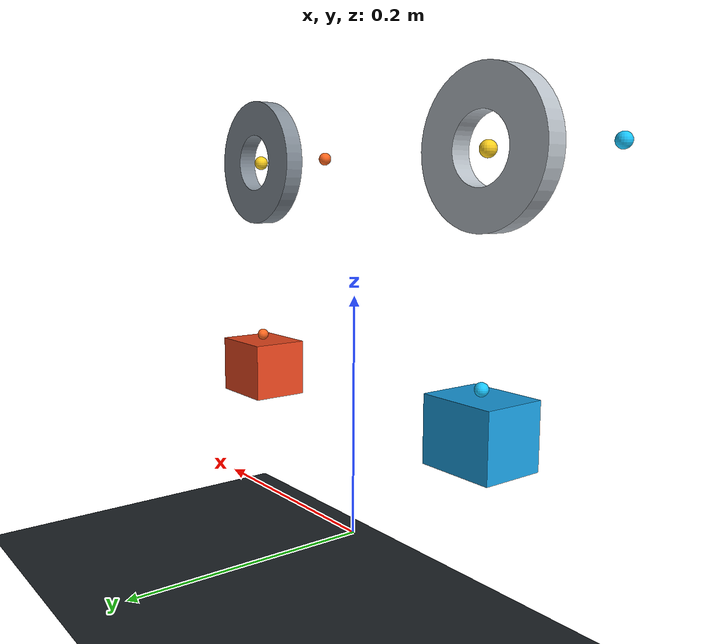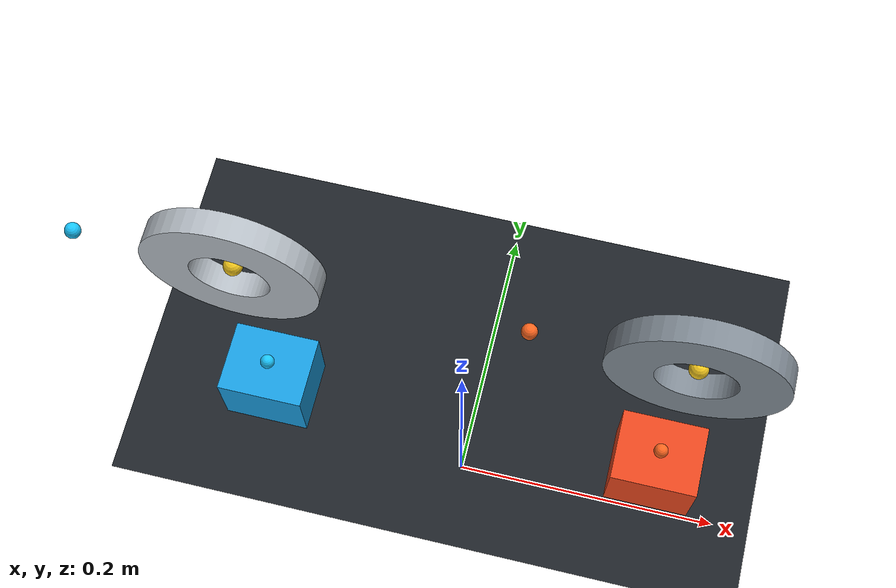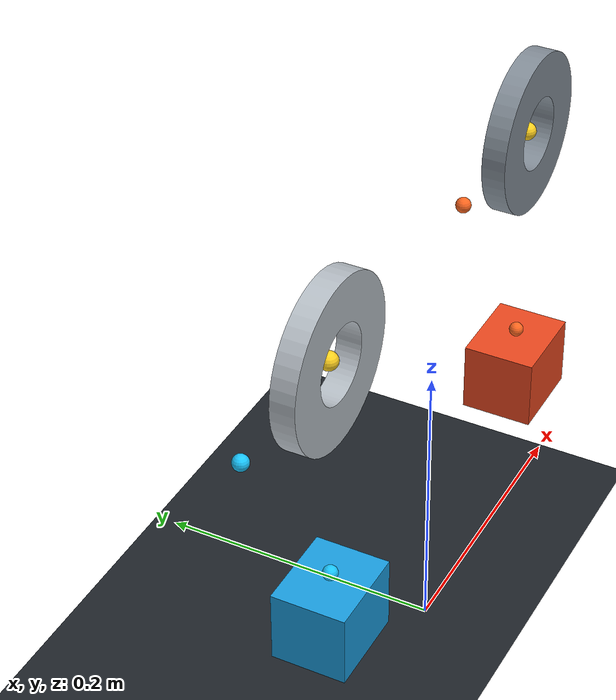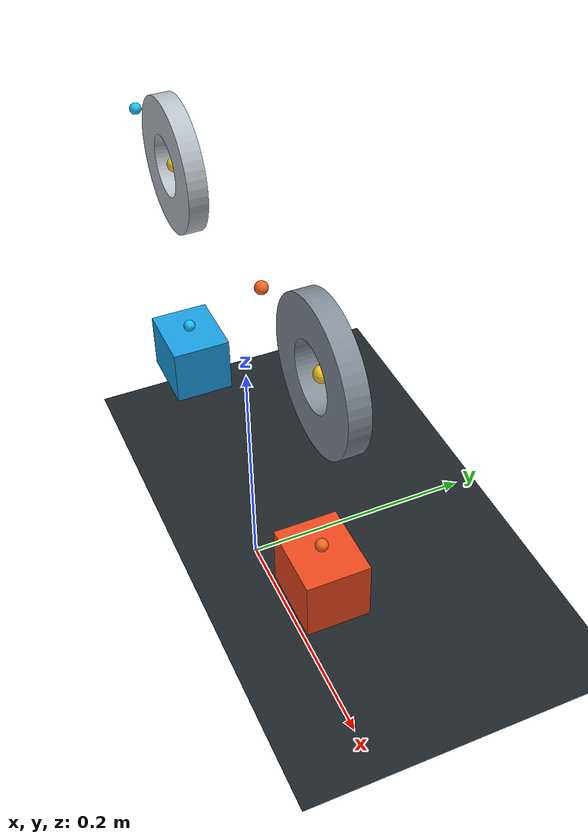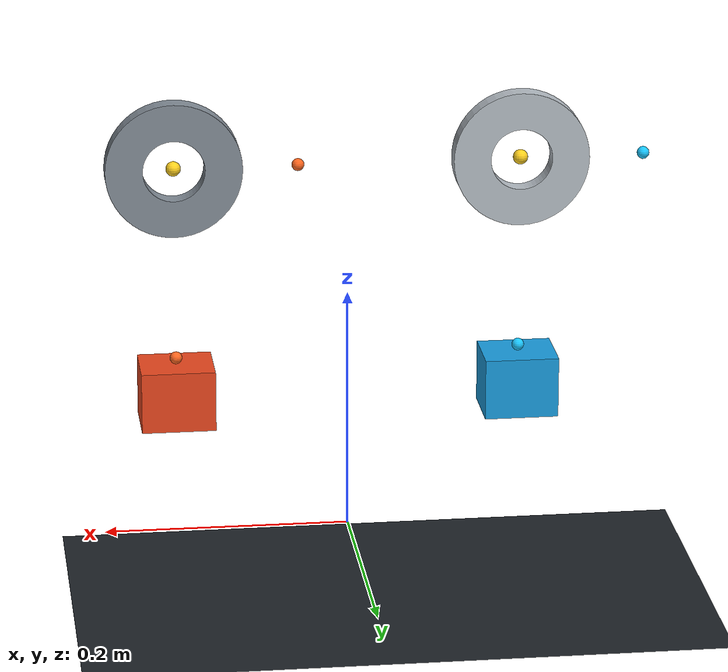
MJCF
<mujoco model="analytic_eyelet_friction_comparison">
  <compiler autolimits="true" angle="radian" meshdir="assets/eyelet" />
  <size nuser_site="1" />
  <option timestep="0.0005" gravity="0 0 -9.81" integrator="RK4">
    <flag energy="enable" />
  </option>
  <statistic center="0 0 0.20" extent="0.46" />

  <extension>
    <plugin plugin="mujoco.cable.unilateral">
      <instance name="smooth_eyelet_cable">
        <config key="stiffness" value="50" />
        <config key="damping" value="0.6" />
        <config key="slack" value="0" />
        <config key="home_length" value="auto_initial" />
        <config key="pretension_offset" value="0.040" />
        <config key="max_tension" value="5" />
        <config key="route_mode" value="surface" />
        <config key="route_tendon" value="smooth_eyelet_seed" />
        <config key="site_role_user_index" value="0" />
        <config key="visual_width" value="4" />
      </instance>
      <instance name="rough_eyelet_cable">
        <config key="stiffness" value="50" />
        <config key="damping" value="0.6" />
        <config key="slack" value="0" />
        <config key="home_length" value="auto_initial" />
        <config key="pretension_offset" value="0.040" />
        <config key="max_tension" value="5" />
        <config key="route_mode" value="surface" />
        <config key="route_tendon" value="rough_eyelet_seed" />
        <config key="site_role_user_index" value="0" />
        <config key="guide_friction_mu" value="0.45" />
        <config key="capstan_direction" value="forward" />
        <config key="visual_width" value="4" />
      </instance>
    </plugin>
  </extension>

  <visual>
    <global offwidth="1280" offheight="720" />
    <quality shadowsize="4096" />
    <map znear="0.01" />
  </visual>

  <asset>
    <mesh name="eyelet_visual_mesh" file="washer.obj" />
    <material name="smooth_eyelet" rgba="0.72 0.75 0.78 1" />
    <material name="rough_eyelet" rgba="0.52 0.56 0.60 1" />
    <material name="smooth_load" rgba="0.10 0.62 0.88 1" />
    <material name="rough_load" rgba="0.92 0.28 0.12 1" />
  </asset>

  <default>
    <site size="0.004" />
    <default class="endpoint">
      <site user="1" size="0.005" />
    </default>
    <default class="eyelet_guide">
      <site user="3" size="0.006" rgba="1 0.82 0.12 1" />
    </default>
  </default>

  <worldbody>
    <light name="key" pos="-0.25 -0.6 0.8" dir="0.25 0.7 -0.7" />
    <camera name="overview" pos="0 -0.78 0.50"
            xyaxes="1 0 0 0 0.342 0.94" />
    <geom name="floor" type="plane" pos="0 0 -0.025"
          size="0.38 0.24 0.01" rgba="0.12 0.14 0.16 1" />

    <body name="smooth_eyelet" pos="-0.14 0 0.31">
      <geom type="mesh" mesh="eyelet_visual_mesh"
            euler="1.57079632679 0 0" material="smooth_eyelet"
            contype="0" conaffinity="0" />
      <site name="smooth_guide" class="eyelet_guide" />
    </body>
    <site name="smooth_anchor" class="endpoint"
          pos="-0.24 0 0.31" rgba="0.10 0.78 1 1" />
    <body name="smooth_payload" pos="-0.14 0 0.12">
      <joint name="smooth_payload_slide" type="slide" axis="0 0 1"
             range="-0.07 0.07" damping="0.20" />
      <geom type="box" size="0.030 0.025 0.025" mass="0.12"
            material="smooth_load" contype="0" conaffinity="0" />
      <site name="smooth_load_end" class="endpoint" pos="0 0 0.030"
            rgba="0.10 0.78 1 1" />
    </body>

    <body name="rough_eyelet" pos="0.14 0 0.31">
      <geom type="mesh" mesh="eyelet_visual_mesh"
            euler="1.57079632679 0 0" material="rough_eyelet"
            contype="0" conaffinity="0" />
      <site name="rough_guide" class="eyelet_guide" />
    </body>
    <site name="rough_anchor" class="endpoint"
          pos="0.04 0 0.31" rgba="1 0.40 0.12 1" />
    <body name="rough_payload" pos="0.14 0 0.12">
      <joint name="rough_payload_slide" type="slide" axis="0 0 1"
             range="-0.07 0.07" damping="0.20" />
      <geom type="box" size="0.030 0.025 0.025" mass="0.12"
            material="rough_load" contype="0" conaffinity="0" />
      <site name="rough_load_end" class="endpoint" pos="0 0 0.030"
            rgba="1 0.40 0.12 1" />
    </body>
  </worldbody>

  <tendon>
    <spatial name="smooth_eyelet_seed" limited="false"
             width="0.000000001" rgba="0.10 0.78 1 1">
      <site site="smooth_anchor" />
      <site site="smooth_guide" />
      <site site="smooth_load_end" />
    </spatial>
    <spatial name="rough_eyelet_seed" limited="false"
             width="0.000000001" rgba="1 0.40 0.12 1">
      <site site="rough_anchor" />
      <site site="rough_guide" />
      <site site="rough_load_end" />
    </spatial>
  </tendon>

  <sensor>
    <plugin name="smooth_eyelet_state" instance="smooth_eyelet_cable" />
    <plugin name="rough_eyelet_state" instance="rough_eyelet_cable" />
    <jointpos name="smooth_payload_displacement"
              joint="smooth_payload_slide" />
    <jointvel name="smooth_payload_velocity"
              joint="smooth_payload_slide" />
    <jointpos name="rough_payload_displacement"
              joint="rough_payload_slide" />
    <jointvel name="rough_payload_velocity"
              joint="rough_payload_slide" />
  </sensor>
</mujoco>
